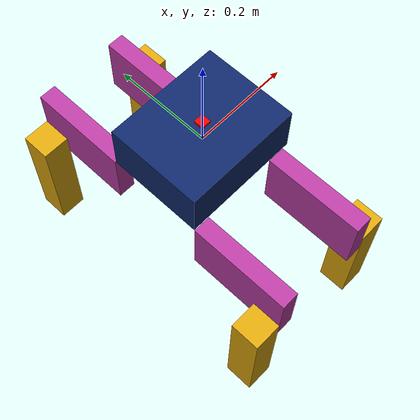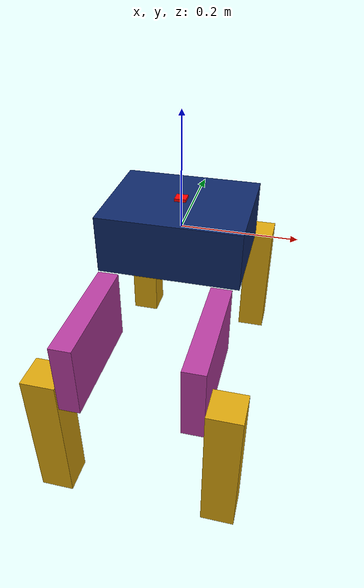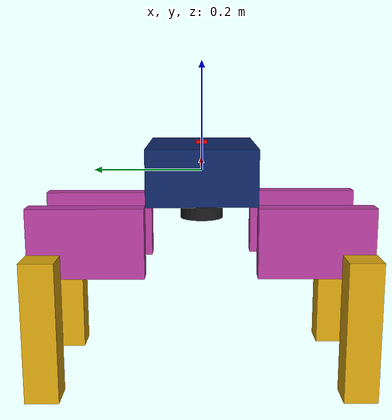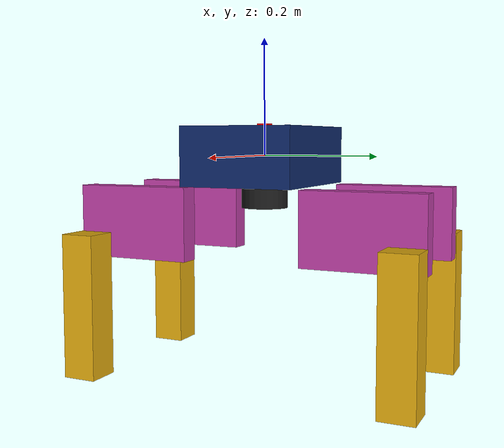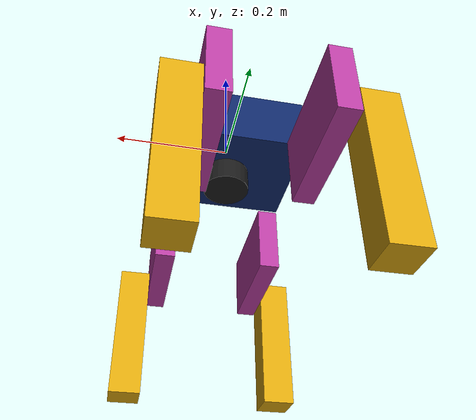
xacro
<robot name="robot">
  <link name="base_footprint"></link>
  <joint name="base_joint" type="fixed">
    <parent link="base_footprint" />
    <child link="base_link" />
    <origin xyz="0 0 0" rpy="0 0 0" />
  </joint>

  <link name="base_link">
    <visual>
      <origin xyz="0 0 0" rpy="0 0 0" />
      <geometry>
        <box size="0.243 0.196 0.1" /> </geometry>
      <material name="base_link-material">
        <color rgba="0.054480276435339814 0.15292615198613213 0.407240211891531 1" />
      </material>
    </visual>
    <collision>
      <origin xyz="0 0 0" rpy="0 0 0" />
      <geometry>
        <box size="0.243 0.196 0.1" />
      </geometry>
    </collision>
    <inertial>
      <origin xyz="0 0 0" rpy="0 0 0" />
      <mass value="0.05" />
      <inertia ixx="0.16666666666666666" ixy="0" ixz="0" iyy="0.16666666666666666" iyz="0" izz="0.16666666666666666" />
    </inertial>
  </link>

  <joint name="base_link_to_cube5" type="revolute">
    <parent link="base_link" />
    <child link="cube5" />
    <origin xyz="0.069 0.098 -0.11469792884829269" rpy="-3.141592653589793 0 -3.141592653589793" />
    <axis xyz="0 0 1"/>
    <limit effort="1000.0"  velocity="0.5"/>
  </joint>
  <link name="cube5">
    <visual>
      <origin xyz="0 0.103 0" rpy="0 0 0" />
      <geometry>
        <box size="0.036 0.206 0.125" />
      </geometry>
      <material name="cube5-material">
        <color rgba="0.7230551289161951 0.23839757380151394 0.6307571363387763 1" />
      </material>
    </visual>
    <collision>
      <origin xyz="0 0.103 0" rpy="0 0 0" />
      <geometry>
        <box size="0.036 0.206 0.125" />
      </geometry>
    </collision>
    <inertial>
      <origin xyz="0 0.103 0" rpy="0 0 0" />
      <mass value="0.05" />
      <inertia ixx="0.16666666666666666" ixy="0" ixz="0" iyy="0.16666666666666666" iyz="0" izz="0.16666666666666666" />
    </inertial>
  </link>
  <joint name="cube5_to_cube9" type="revolute">
    <parent link="cube5" />
    <child link="cube9" />
    <origin xyz="-0.048161324956420803 0.17705483565899827 0.019230531314252386" rpy="-1.570796326794897 0 1.570796326794897" />
    <axis xyz="0 0 1"/>
    <limit effort="1000.0" lower="-3.14" upper="3.14" velocity="0.5"/>
  </joint>
  <link name="cube9">
    <visual>
      <origin xyz="-2.127657382593146e-18 -0.125 0" rpy="1.5707963267948963 0 0" />
      <geometry>
        <box size="0.06 0.057 0.25" />
      </geometry>
      <material name="cube9-material">
        <color rgba="0.8631572134510892 0.6514056374127929 0.05126945836711539 1" />
      </material>
    </visual>
    <collision>
      <origin xyz="-2.127657382593146e-18 -0.125 0" rpy="1.5707963267948963 0 0" />
      <geometry>
        <box size="0.06 0.06 0.25" />
      </geometry>
    </collision>
    <inertial>
      <origin xyz="-2.127657382593146e-18 -0.125 0" rpy="0 0 0" />
      <mass value="0.05" />
      <inertia ixx="0.16666666666666666" ixy="0" ixz="0" iyy="0.16666666666666666" iyz="0" izz="0.16666666666666666" />
    </inertial>
  </link>

  <joint name="base_link_to_cube6" type="revolute">
    <parent link="base_link" />
    <child link="cube6" />
    <origin xyz="-0.1033382551226713 -0.0983866064663887 -0.11469792884829269" rpy="3.141592653589793 0 0" />
    <axis xyz="0 0 1"/>
    <limit effort="1000.0" lower="-3.14" upper="3.14" velocity="0.5"/>
  </joint>
  <link name="cube6">
    <visual>
      <origin xyz="0 0.103 0" rpy="0 0 0" />
      <geometry>
        <box size="0.036 0.206 0.125" />
      </geometry>
      <material name="cube6-material">
        <color rgba="0.7230551289161951 0.23839757380151394 0.6307571363387763 1" />
      </material>
    </visual>
    <collision>
      <origin xyz="0 0.103 0" rpy="0 0 0" />
      <geometry>
        <box size="0.036 0.206 0.125" />
      </geometry>
    </collision>
    <inertial>
      <origin xyz="0 0.103 0" rpy="0 0 0" />
      <mass value="0.05" />
      <inertia ixx="0.16666666666666666" ixy="0" ixz="0" iyy="0.16666666666666666" iyz="0" izz="0.16666666666666666" />
    </inertial>
  </link>
  <joint name="cube6_to_cube10" type="revolute">
    <parent link="cube6" />
    <child link="cube10" />
    <origin xyz="-0.048161324956420803 0.17705483565899827 0.019230531314252386" rpy="-1.5707963267948966 0 1.5707963267948963" />
    <axis xyz="0 0 1"/>
    <limit effort="1000.0" lower="-3.14" upper="3.14" velocity="0.5"/>
  </joint>
  <link name="cube10">
    <visual>
      <origin xyz="-2.127657382593146e-18 -0.125 0" rpy="1.5707963267948963 0 0" />
      <geometry>
        <box size="0.06 0.057 0.25" />
      </geometry>
      <material name="cube10-material">
        <color rgba="0.8631572134510892 0.6514056374127929 0.05126945836711539 1" />
      </material>
    </visual>
    <collision>
      <origin xyz="-2.127657382593146e-18 -0.125 0" rpy="1.5707963267948963 0 0" />
      <geometry>
        <box size="0.06 0.06 0.25" />
      </geometry>
    </collision>
    <inertial>
      <origin xyz="-2.127657382593146e-18 -0.125 0" rpy="0 0 0" />
      <mass value="0.05" />
      <inertia ixx="0.16666666666666666" ixy="0" ixz="0" iyy="0.16666666666666666" iyz="0" izz="0.16666666666666666" />
    </inertial>
  </link>

  <joint name="base_link_to_cube7" type="revolute">
    <parent link="base_link" />
    <child link="cube7" />
    <origin xyz="0.09216405792838034 -0.0977373217828965 -0.11469792884829269" rpy="3.141592653589793 0 0" />
    <axis xyz="0 0 1"/>
    <limit effort="1000.0" lower="-3.14" upper="3.14" velocity="0.5"/>
  </joint>
  <link name="cube7">
    <visual>
      <origin xyz="0 0.103 0" rpy="0 0 0" />
      <geometry>
        <box size="0.036 0.206 0.125" />
      </geometry>
      <material name="cube7-material">
        <color rgba="0.7230551289161951 0.23839757380151394 0.6307571363387763 1" />
      </material>
    </visual>
    <collision>
      <origin xyz="0 0.103 0" rpy="0 0 0" />
      <geometry>
        <box size="0.036 0.206 0.125" />
      </geometry>
    </collision>
    <inertial>
      <origin xyz="0 0.103 0" rpy="0 0 0" />
      <mass value="0.05" />
      <inertia ixx="0.16666666666666666" ixy="0" ixz="0" iyy="0.16666666666666666" iyz="0" izz="0.16666666666666666" />
    </inertial>
  </link>
  <joint name="cube7_to_cube11" type="revolute">
    <parent link="cube7" />
    <child link="cube11" />
    <origin xyz="0.04633851732690226 0.17705483565899827 0.019230531314252386" rpy="-1.5707963267948966 0 1.5707963267948963" />
    <axis xyz="0 0 1"/>
    <limit effort="1000.0" lower="-3.14" upper="3.14" velocity="0.5"/>
  </joint>
  <link name="cube11">
    <visual>
      <origin xyz="-2.127657382593146e-18 -0.125 0" rpy="1.5707963267948963 0 0" />
      <geometry>
        <box size="0.06 0.057 0.25" />
      </geometry>
      <material name="cube11-material">
        <color rgba="0.8631572134510892 0.6514056374127929 0.05126945836711539 1" />
      </material>
    </visual>
    <collision>
      <origin xyz="-2.127657382593146e-18 -0.125 0" rpy="1.5707963267948963 0 0" />
      <geometry>
        <box size="0.06 0.06 0.25" />
      </geometry>
    </collision>
    <inertial>
      <origin xyz="-2.127657382593146e-18 -0.125 0" rpy="0 0 0" />
      <mass value="0.05" />
      <inertia ixx="0.16666666666666666" ixy="0" ixz="0" iyy="0.16666666666666666" iyz="0" izz="0.16666666666666666" />
    </inertial>
  </link>

  <joint name="base_link_to_cube8" type="revolute">
    <parent link="base_link" />
    <child link="cube8" />
    <origin xyz="-0.10493619252487814 0.10058603880101953 -0.11469792884829269" rpy="-3.141592653589793 0 -3.141592653589793" />
    <axis xyz="0 0 1"/>
    <limit effort="1000.0" lower="-3.14" upper="3.14" velocity="0.5"/>
  </joint>
  <link name="cube8">
    <visual>
      <origin xyz="0 0.103 0" rpy="0 0 0" />
      <geometry>
        <box size="0.036 0.206 0.125" />
      </geometry>
      <material name="cube8-material">
        <color rgba="0.7230551289161951 0.23839757380151394 0.6307571363387763 1" />
      </material>
    </visual>
    <collision>
      <origin xyz="0 0.103 0" rpy="0 0 0" />
      <geometry>
        <box size="0.036 0.206 0.125" />
      </geometry>
    </collision>
    <inertial>
      <origin xyz="0 0.103 0" rpy="0 0 0" />
      <mass value="0.05" />
      <inertia ixx="0.16666666666666666" ixy="0" ixz="0" iyy="0.16666666666666666" iyz="0" izz="0.16666666666666666" />
    </inertial>
  </link>
  <joint name="cube8_to_cube12" type="revolute">
    <parent link="cube8" />
    <child link="cube12" />
    <origin xyz="0.04633851732690226 0.17705483565899827 0.019230531314252386" rpy="-1.5707963267948966 0 1.5707963267948963" />
    <axis xyz="0 0 1"/>
    <limit effort="1000.0" lower="-3.14" upper="3.14" velocity="0.5"/>
  </joint>
  <link name="cube12">
    <visual>
      <origin xyz="-2.127657382593146e-18 -0.125 0" rpy="1.5707963267948963 0 0" />
      <geometry>
        <box size="0.06 0.057 0.25" />
      </geometry>
      <material name="cube12-material">
        <color rgba="0.8631572134510892 0.6514056374127929 0.05126945836711539 1" />
      </material>
    </visual>
    <collision>
      <origin xyz="-2.127657382593146e-18 -0.125 0" rpy="1.5707963267948963 0 0" />
      <geometry>
        <box size="0.06 0.06 0.25" />
      </geometry>
    </collision>
    <inertial>
      <origin xyz="-2.127657382593146e-18 -0.125 0" rpy="0 0 0" />
      <mass value="0.05" />
      <inertia ixx="0.16666666666666666" ixy="0" ixz="0" iyy="0.16666666666666666" iyz="0" izz="0.16666666666666666" />
    </inertial>
  </link>

  <link name="imu_link">
    <visual>
      <geometry>
        <box size="0.02 0.02 0.01"/>
      </geometry>
      <material name="red">
        <color rgba="1.0 0.0 0.0 1.0"/>
      </material>
    </visual>
  </link>

  <joint name="imu_joint" type="fixed">
    <parent link="base_link"/>
    <child link="imu_link"/>
    <origin xyz="0 0 0.05" rpy="0 0 0"/> </joint>

  <gazebo reference="imu_link">
    <sensor name="imu_sensor" type="imu">
      <always_on>true</always_on>
      <update_rate>50</update_rate>
      <visualize>true</visualize>
      <topic>imu</topic>
    </sensor>
  </gazebo>

  <joint name="belly_lidar_joint" type="fixed">
    <parent link="base_link"/>
    <child link="belly_lidar_link"/>
    <origin xyz="0 0 -0.07" rpy="3.14159 0 0"/>
  </joint>

  <link name="belly_lidar_link">
    <visual>
      <geometry><cylinder radius="0.04" length="0.04"/></geometry>
      <material name="black"><color rgba="0.1 0.1 0.1 1"/></material>
    </visual>
    <collision>
      <geometry><cylinder radius="0.04" length="0.04"/></geometry>
    </collision>
    <inertial>
      <mass value="0.1"/>
      <inertia ixx="0.001" ixy="0" ixz="0" iyy="0.001" iyz="0" izz="0.001"/>
    </inertial>
  </link>

  <gazebo reference="belly_lidar_link">
    <sensor name="belly_lidar" type="gpu_lidar">
      <always_on>true</always_on>
      <visualize>true</visualize>
      <update_rate>10</update_rate>
      <ray>
        <scan>
          <horizontal>
            <samples>360</samples>
            <resolution>1.0</resolution>
            <min_angle>-3.14159</min_angle>
            <max_angle>3.14159</max_angle>
          </horizontal>
        </scan>
        <range>
          <min>0.45</min>
          <max>10.0</max>
          <resolution>0.01</resolution>
        </range>
      </ray>
      <topic>scan</topic>
      <gz_frame_id>belly_lidar_link</gz_frame_id>
    </sensor>
  </gazebo>
  <ros2_control name="GazeboSimSystem" type="system">
    <hardware>
      <plugin>gz_ros2_control/GazeboSimSystem</plugin>
    </hardware>

    <joint name="base_link_to_cube5">
      <command_interface name="position"/>
      <state_interface name="position"/>
    </joint>
    <joint name="cube5_to_cube9">
      <command_interface name="position"/>
      <state_interface name="position"/>
    </joint>

    <joint name="base_link_to_cube6">
      <command_interface name="position"/>
      <state_interface name="position"/>
    </joint>
    <joint name="cube6_to_cube10">
      <command_interface name="position"/>
      <state_interface name="position"/>
    </joint>

    <joint name="base_link_to_cube7">
      <command_interface name="position"/>
      <state_interface name="position"/>
    </joint>
    <joint name="cube7_to_cube11">
      <command_interface name="position"/>
      <state_interface name="position"/>
    </joint>

    <joint name="base_link_to_cube8">
      <command_interface name="position"/>
      <state_interface name="position"/>
    </joint>
    <joint name="cube8_to_cube12">
      <command_interface name="position"/>
      <state_interface name="position"/>
    </joint>
  </ros2_control>

  <gazebo reference="cube9">
    <mu1>1.0</mu1>
    <mu2>1.0</mu2>
    <kp>1000000.0</kp>
    <kd>100.0</kd>
    <minDepth>0.001</minDepth>
  </gazebo>
  <gazebo reference="cube10">
    <mu1>1.0</mu1>
    <mu2>1.0</mu2>
    <kp>1000000.0</kp>
    <kd>100.0</kd>
    <minDepth>0.001</minDepth>
  </gazebo>
  <gazebo reference="cube11">
    <mu1>1.0</mu1>
    <mu2>1.0</mu2>
    <kp>1000000.0</kp>
    <kd>100.0</kd>
    <minDepth>0.001</minDepth>
  </gazebo>
  <gazebo reference="cube12">
    <mu1>1.0</mu1>
    <mu2>1.0</mu2>
    <kp>1000000.0</kp>
    <kd>100.0</kd>
    <minDepth>0.001</minDepth>
  </gazebo>
  <gazebo>
    <plugin filename="libgz_ros2_control-system.so" name="gz_ros2_control::GazeboSimROS2ControlPlugin">
      <parameters>$(find quadruped_basics)/config/sim_controllers.yaml</parameters>
    </plugin>
  </gazebo>
  <gazebo>
    <plugin filename="libgz-sim-sensors-system.so" name="gz::sim::systems::Sensors">
      <render_engine>ogre2</render_engine>
    </plugin>
  </gazebo>
  <plugin filename="gz-sim-imu-system" name="gz::sim::systems::Imu">
  </plugin>
</robot>
